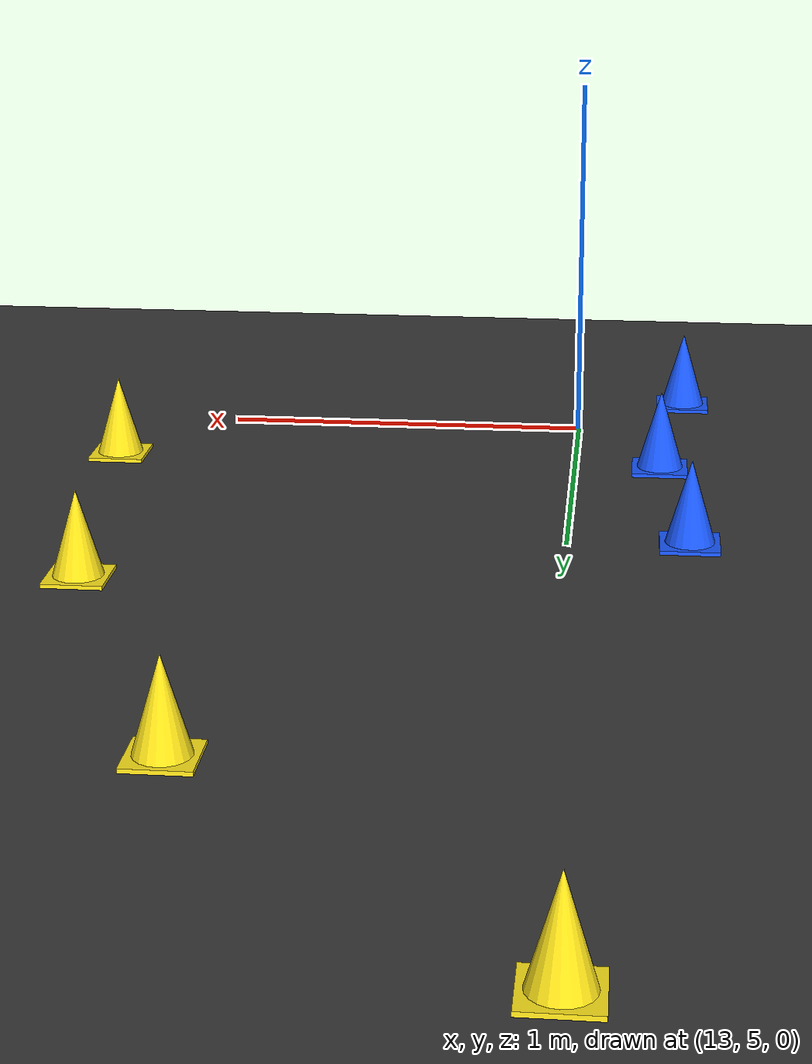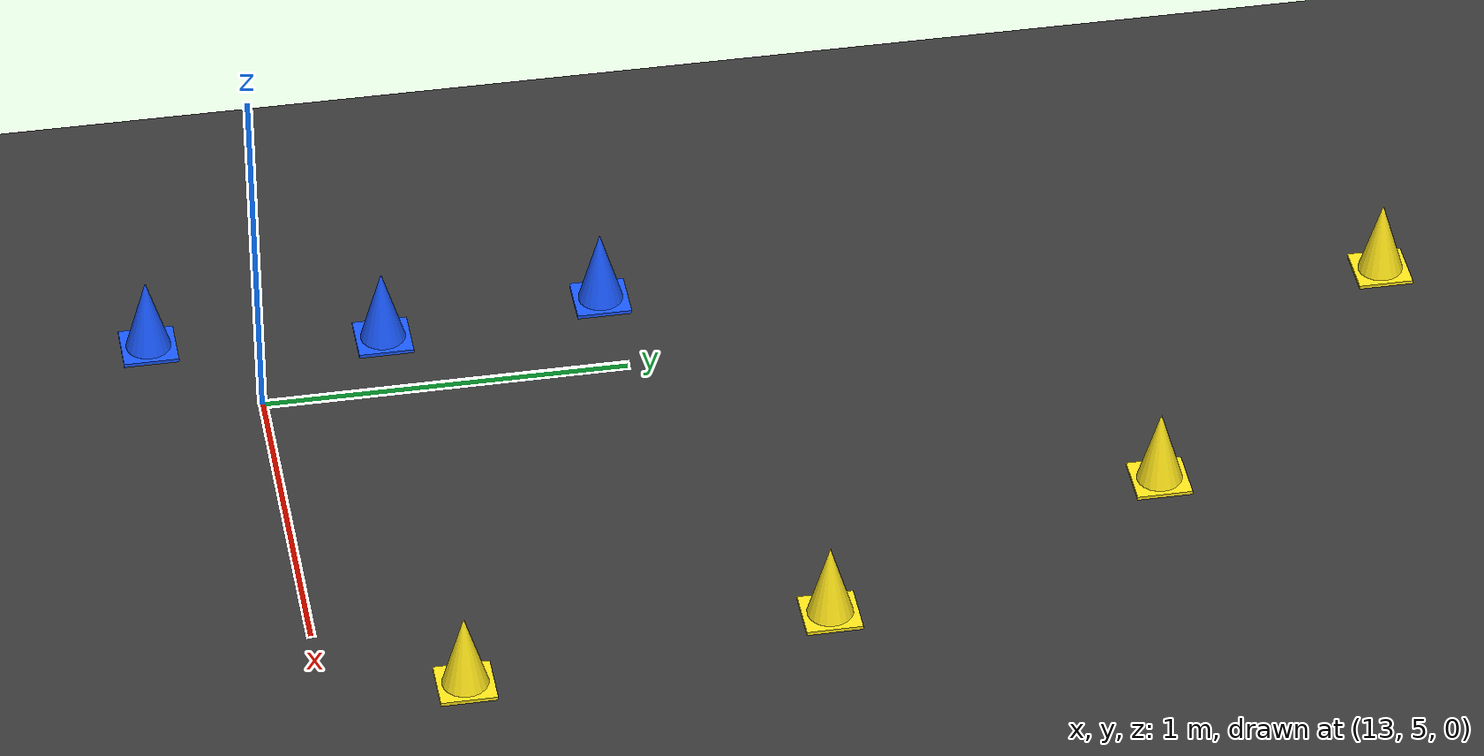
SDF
<sdf version="1.8">
 <world name="track_with_cones">
  <model name="ground_plane">
   <static>true</static>
   <link name="link">
    <collision name="collision">
     <geometry><plane><normal>0 0 1</normal><size>100 100</size></plane></geometry>
     <surface><friction><ode><mu>100</mu><mu2>100</mu2></ode></friction></surface>
    </collision>
    <visual name="visual">
     <geometry><plane><normal>0 0 1</normal><size>100 100</size></plane></geometry>
     <material>
      <ambient>0.22 0.22 0.22 1</ambient>
      <diffuse>0.22 0.22 0.22 1</diffuse>
      <specular>0.05 0.05 0.05 1</specular>
     </material>
    </visual>
   </link>
  </model>
  <model name="cone_blue_19">
   <static>true</static>
   <pose>12.6975 4.7254 0.11 0 0 0</pose>
   <link name="link">
    <visual name="base_visual">
     <pose>0 0 -0.105 0 0 0</pose>
     <geometry><box><size>0.15 0.15 0.01</size></box></geometry>
     <material>
      <ambient>0.05 0.25 0.95 1.0</ambient>
      <diffuse>0.10 0.35 1.00 1.0</diffuse>
      <specular>0.2 0.2 0.2 1.0</specular>
     </material>
    </visual>
    <visual name="cone_visual">
     <geometry><cone><radius>0.065</radius><length>0.22</length></cone></geometry>
     <material>
      <ambient>0.05 0.25 0.95 1.0</ambient>
      <diffuse>0.10 0.35 1.00 1.0</diffuse>
      <specular>0.2 0.2 0.2 1.0</specular>
     </material>
    </visual>
    <collision name="collision">
     <geometry><cylinder><radius>0.065</radius><length>0.22</length></cylinder></geometry>
    </collision>
   </link>
  </model>
  <model name="cone_blue_20">
   <static>true</static>
   <pose>12.7675 5.3610 0.11 0 0 0</pose>
   <link name="link">
    <visual name="base_visual">
     <pose>0 0 -0.105 0 0 0</pose>
     <geometry><box><size>0.15 0.15 0.01</size></box></geometry>
     <material>
      <ambient>0.05 0.25 0.95 1.0</ambient>
      <diffuse>0.10 0.35 1.00 1.0</diffuse>
      <specular>0.2 0.2 0.2 1.0</specular>
     </material>
    </visual>
    <visual name="cone_visual">
     <geometry><cone><radius>0.065</radius><length>0.22</length></cone></geometry>
     <material>
      <ambient>0.05 0.25 0.95 1.0</ambient>
      <diffuse>0.10 0.35 1.00 1.0</diffuse>
      <specular>0.2 0.2 0.2 1.0</specular>
     </material>
    </visual>
    <collision name="collision">
     <geometry><cylinder><radius>0.065</radius><length>0.22</length></cylinder></geometry>
    </collision>
   </link>
  </model>
  <model name="cone_yellow_20">
   <static>true</static>
   <pose>14.2675 5.3690 0.11 0 0 0</pose>
   <link name="link">
    <visual name="base_visual">
     <pose>0 0 -0.105 0 0 0</pose>
     <geometry><box><size>0.15 0.15 0.01</size></box></geometry>
     <material>
      <ambient>0.95 0.85 0.05 1.0</ambient>
      <diffuse>1.00 0.90 0.10 1.0</diffuse>
      <specular>0.2 0.2 0.2 1.0</specular>
     </material>
    </visual>
    <visual name="cone_visual">
     <geometry><cone><radius>0.065</radius><length>0.22</length></cone></geometry>
     <material>
      <ambient>0.95 0.85 0.05 1.0</ambient>
      <diffuse>1.00 0.90 0.10 1.0</diffuse>
      <specular>0.2 0.2 0.2 1.0</specular>
     </material>
    </visual>
    <collision name="collision">
     <geometry><cylinder><radius>0.065</radius><length>0.22</length></cylinder></geometry>
    </collision>
   </link>
  </model>
  <model name="cone_blue_21">
   <static>true</static>
   <pose>12.6960 5.9743 0.11 0 0 0</pose>
   <link name="link">
    <visual name="base_visual">
     <pose>0 0 -0.105 0 0 0</pose>
     <geometry><box><size>0.15 0.15 0.01</size></box></geometry>
     <material>
      <ambient>0.05 0.25 0.95 1.0</ambient>
      <diffuse>0.10 0.35 1.00 1.0</diffuse>
      <specular>0.2 0.2 0.2 1.0</specular>
     </material>
    </visual>
    <visual name="cone_visual">
     <geometry><cone><radius>0.065</radius><length>0.22</length></cone></geometry>
     <material>
      <ambient>0.05 0.25 0.95 1.0</ambient>
      <diffuse>0.10 0.35 1.00 1.0</diffuse>
      <specular>0.2 0.2 0.2 1.0</specular>
     </material>
    </visual>
    <collision name="collision">
     <geometry><cylinder><radius>0.065</radius><length>0.22</length></cylinder></geometry>
    </collision>
   </link>
  </model>
  <model name="cone_yellow_21">
   <static>true</static>
   <pose>14.1479 6.3513 0.11 0 0 0</pose>
   <link name="link">
    <visual name="base_visual">
     <pose>0 0 -0.105 0 0 0</pose>
     <geometry><box><size>0.15 0.15 0.01</size></box></geometry>
     <material>
      <ambient>0.95 0.85 0.05 1.0</ambient>
      <diffuse>1.00 0.90 0.10 1.0</diffuse>
      <specular>0.2 0.2 0.2 1.0</specular>
     </material>
    </visual>
    <visual name="cone_visual">
     <geometry><cone><radius>0.065</radius><length>0.22</length></cone></geometry>
     <material>
      <ambient>0.95 0.85 0.05 1.0</ambient>
      <diffuse>1.00 0.90 0.10 1.0</diffuse>
      <specular>0.2 0.2 0.2 1.0</specular>
     </material>
    </visual>
    <collision name="collision">
     <geometry><cylinder><radius>0.065</radius><length>0.22</length></cylinder></geometry>
    </collision>
   </link>
  </model>
  <model name="cone_yellow_22">
   <static>true</static>
   <pose>13.7426 7.3195 0.11 0 0 0</pose>
   <link name="link">
    <visual name="base_visual">
     <pose>0 0 -0.105 0 0 0</pose>
     <geometry><box><size>0.15 0.15 0.01</size></box></geometry>
     <material>
      <ambient>0.95 0.85 0.05 1.0</ambient>
      <diffuse>1.00 0.90 0.10 1.0</diffuse>
      <specular>0.2 0.2 0.2 1.0</specular>
     </material>
    </visual>
    <visual name="cone_visual">
     <geometry><cone><radius>0.065</radius><length>0.22</length></cone></geometry>
     <material>
      <ambient>0.95 0.85 0.05 1.0</ambient>
      <diffuse>1.00 0.90 0.10 1.0</diffuse>
      <specular>0.2 0.2 0.2 1.0</specular>
     </material>
    </visual>
    <collision name="collision">
     <geometry><cylinder><radius>0.065</radius><length>0.22</length></cylinder></geometry>
    </collision>
   </link>
  </model>
  <model name="cone_yellow_23">
   <static>true</static>
   <pose>12.9353 8.1161 0.11 0 0 0</pose>
   <link name="link">
    <visual name="base_visual">
     <pose>0 0 -0.105 0 0 0</pose>
     <geometry><box><size>0.15 0.15 0.01</size></box></geometry>
     <material>
      <ambient>0.95 0.85 0.05 1.0</ambient>
      <diffuse>1.00 0.90 0.10 1.0</diffuse>
      <specular>0.2 0.2 0.2 1.0</specular>
     </material>
    </visual>
    <visual name="cone_visual">
     <geometry><cone><radius>0.065</radius><length>0.22</length></cone></geometry>
     <material>
      <ambient>0.95 0.85 0.05 1.0</ambient>
      <diffuse>1.00 0.90 0.10 1.0</diffuse>
      <specular>0.2 0.2 0.2 1.0</specular>
     </material>
    </visual>
    <collision name="collision">
     <geometry><cylinder><radius>0.065</radius><length>0.22</length></cylinder></geometry>
    </collision>
   </link>
  </model>
 </world>
</sdf>
